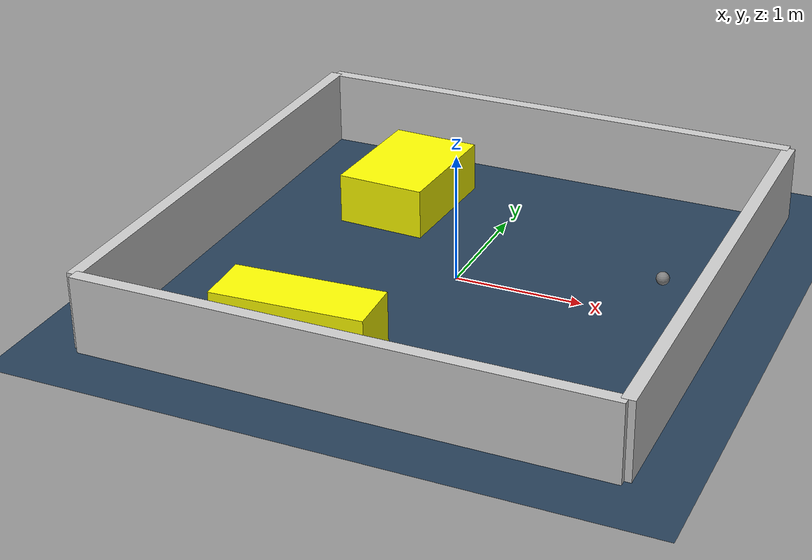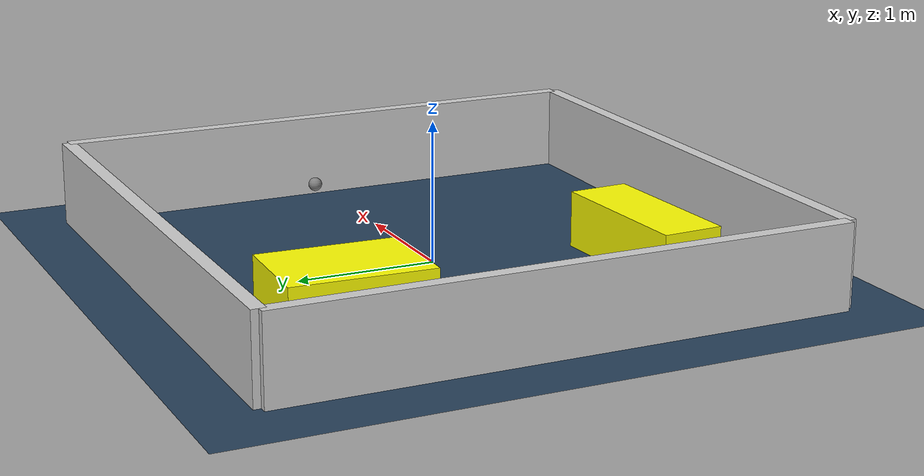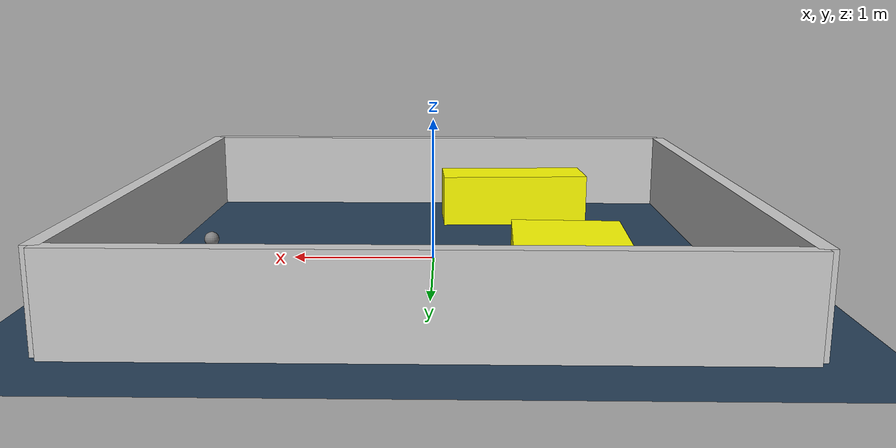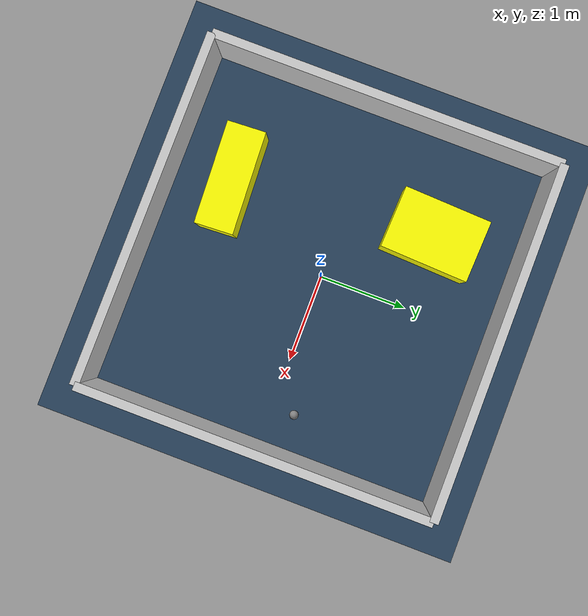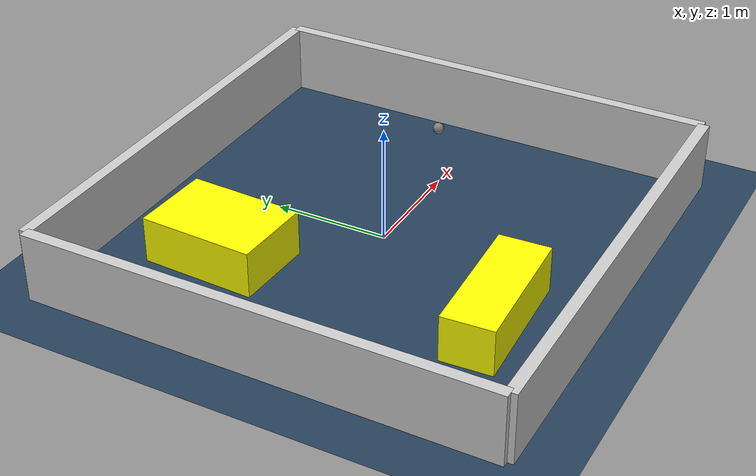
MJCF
<?xml version="1.0" ?>
<mujoco model="generated_environment">
  <option timestep="0.01" integrator="RK4" cone="elliptic"/>
  <default>
    <geom density="1"/>
  </default>
  <asset>
    <texture builtin="gradient" height="3072" rgb1="0.3 0.5 0.7" rgb2="0 0 0" type="skybox" width="512"/>
    <texture builtin="checker" height="300" mark="edge" markrgb="0.8 0.8 0.8" name="groundplane" rgb1="0.2 0.3 0.4" rgb2="0.1 0.2 0.3" type="2d" width="300"/>
    <material name="groundplane" reflectance="0.2" texrepeat="5 5" texture="groundplane" texuniform="true"/>
    <material name="robot" rgba="0.0 1.0 0.0 1"/>
  </asset>
  <worldbody>
    <light dir="0 0 -1" directional="true" pos="0 0 1.5"/>
    <geom condim="4" friction="1.0 0.005 0.001" material="groundplane" name="floor" size="0 0 0.05" type="plane"/>
    <body name="walls">
      <geom name="wall_1" condim="4" pos="-2.0 0.0 0.3" rgba="0.800000011920929 0.800000011920929 0.800000011920929 1.0" size="0.05 2.0 0.3" type="box"/>
      <geom name="wall_2" condim="4" pos="2.0 0.0 0.3" rgba="0.800000011920929 0.800000011920929 0.800000011920929 1.0" size="0.05 2.0 0.3" type="box"/>
      <geom name="wall_3" condim="4" pos="0.0 -2.0 0.3" rgba="0.800000011920929 0.800000011920929 0.800000011920929 1.0" size="2.0 0.05 0.3" type="box"/>
      <geom name="wall_4" condim="4" pos="0.0 2.0 0.3" rgba="0.800000011920929 0.800000011920929 0.800000011920929 1.0" size="2.0 0.05 0.3" type="box"/>
    </body>
    <body name="robot">
      <joint name="joint_x" type="slide" pos="0 0 0" axis="1 0 0"/>
      <joint name="joint_y" type="slide" pos="0 0 0" axis="0 1 0"/>
      <geom name="robot" type="sphere" pos="1.52932844484002 0.2603069966578788 0.2" size="0.05" mass="5." friction="1.0 0.005 0.0001" condim="4"/>
      <site name="sensor_ball"/>
    </body>
    <body name="obstacle_1_movable">
      <geom name="obstacle_1_movable" condim="4" pos="-0.6435224048154227 -1.2969799433002245 0.2" euler="0 0 272.92056563968254" friction="1.0 0.005 0.001" rgba="1 1 0 1" size="0.21990084378362915 0.5869295600518294 0.2" type="box" mass="0.1"/>
      <joint type="free"/>
    </body>
    <body name="obstacle_2_movable">
      <geom name="obstacle_2_movable" condim="4" pos="-0.8541545212576075 1.004479503804122 0.2" euler="0 0 357.50861200361663" friction="1.0 0.005 0.001" rgba="1 1 0 1" size="0.35317690211027664 0.49890445590592036 0.2" type="box" mass="0.1"/>
      <joint type="free"/>
    </body>
  </worldbody>
  <actuator>
    <motor name="actuator_x" joint="joint_x" gear="1" ctrlrange="-1 1"/>
    <motor name="actuator_y" joint="joint_y" gear="1" ctrlrange="-1 1"/>
  </actuator>
</mujoco>
